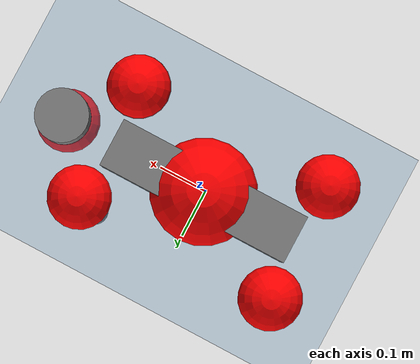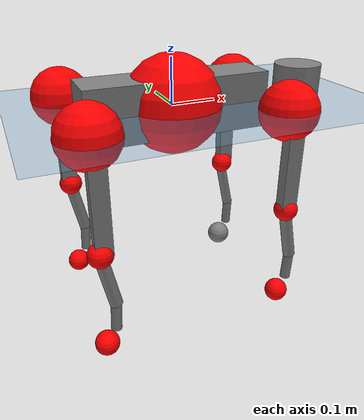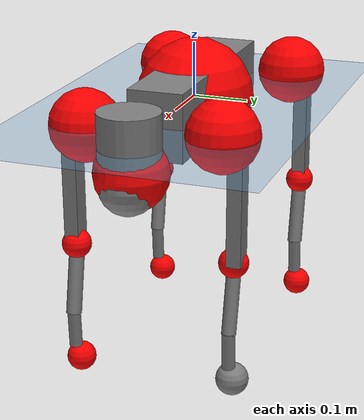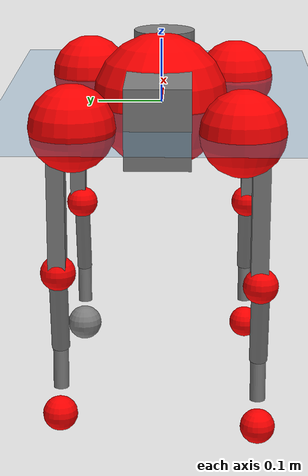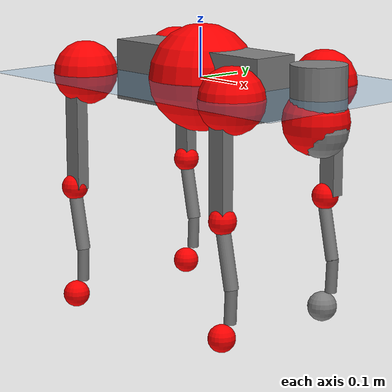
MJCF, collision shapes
<mujoco model="go2">
  <compiler angle="radian" assetdir="assets" balanceinertia="true" inertiafromgeom="false"/>

  <option timestep="0.005" density="1.2" viscosity="2e-05"/>

  <size nkey="1"/>

  <visual>
    <quality shadowsize="8192"/>
    <map shadowclip="0.5"/>
  </visual>

  <default>
    <default class="/">
      <geom contype="0" conaffinity="0" group="1" solref="-1000 -80"/>
      <site size="0.01 0.005 0.005" group="5"/>
      <general forcelimited="true" biastype="affine" gainprm="20" biasprm="0 -20 -0.5"/>
      <default class="go2">
        <joint armature="0.01" damping="0.01" frictionloss="0.2"/>
        <geom condim="1" margin="0.001"/>
        <default class="visual">
          <geom type="mesh" group="2"/>
        </default>
        <default class="collision">
          <geom group="3"/>
          <default class="foot">
            <geom size="0.022 0 0" condim="6" priority="1" friction="0.8 0.02 0.01" solimp="0.015 1 0.022"/>
          </default>
        </default>
        <default class="reward_collision_sphere">
          <geom group="5" rgba="1 0 0 1"/>
        </default>
      </default>
    </default>
  </default>

  <asset>
    <texture type="skybox" colorspace="auto" name="//unnamed_texture_0" builtin="gradient" rgb1="0.95 0.95 0.95" rgb2="0.95 0.95 0.95" width="100" height="600"/>
    <texture type="2d" colorspace="auto" name="texplane" builtin="checker" rgb1="0.345 0.575 0.748" rgb2="0.345 0.575 0.748" markrgb="1 1 1" width="512" height="512"/>
    <material name="MatPlane" class="/" texture="texplane" texuniform="true" texrepeat="2 2" specular="0.9"/>
    <material name="metal" class="/" rgba="0.9 0.95 0.95 1"/>
    <material name="black" class="/" rgba="0 0 0 1"/>
    <material name="white" class="/"/>
    <material name="gray" class="/" rgba="0.671705 0.692426 0.77427 1"/>
    <mesh name="base_0" class="/" file="base_0.obj"/>
    <mesh name="base_1" class="/" file="base_1.obj"/>
    <mesh name="base_2" class="/" file="base_2.obj"/>
    <mesh name="base_3" class="/" file="base_3.obj"/>
    <mesh name="base_4" class="/" file="base_4.obj"/>
    <mesh name="hip_0" class="/" file="hip_0.obj"/>
    <mesh name="hip_1" class="/" file="hip_1.obj"/>
    <mesh name="thigh_0" class="/" file="thigh_0.obj"/>
    <mesh name="thigh_1" class="/" file="thigh_1.obj"/>
    <mesh name="thigh_mirror_0" class="/" file="thigh_mirror_0.obj"/>
    <mesh name="thigh_mirror_1" class="/" file="thigh_mirror_1.obj"/>
    <mesh name="calf_0" class="/" file="calf_0.obj"/>
    <mesh name="calf_1" class="/" file="calf_1.obj"/>
    <mesh name="calf_mirror_0" class="/" file="calf_mirror_0.obj"/>
    <mesh name="calf_mirror_1" class="/" file="calf_mirror_1.obj"/>
    <mesh name="foot" class="/" file="foot.obj"/>
  </asset>

  <worldbody>
    <geom name="floor" class="/" size="100 100 0.125" type="plane" group="0" material="MatPlane"/>
    <light name="toplight_shadow" class="/" pos="0 0 5" dir="0.0990148 0.0990148 -0.990148" type="directional" ambient="0.04 0.04 0.04" diffuse="0.55 0.55 0.55" specular="0.12 0.12 0.12"/>
    <light name="toplight_fill" class="/" pos="0 0 5" dir="0.0990148 0.0990148 -0.990148" type="directional" castshadow="false" ambient="0.04 0.04 0.04" diffuse="0.3 0.3 0.3" specular="0.08 0.08 0.08"/>
    <body name="trunk" childclass="go2" pos="0.00308606 0.00225427 0.00079095" quat="0.999999 0.000899011 -0.000474528 0.000365655">
      <inertial pos="0.0241337 -0.00128716 -0.00370011" quat="0.0161031 0.703472 -0.00412518 0.710529" mass="8.99423" diaginertia="0.160639 0.134241 0.0317543"/>
      <joint name="//unnamed_joint_0" type="free" armature="0" damping="0" frictionloss="0"/>
      <geom name="//unnamed_geom_1" class="visual" material="black" mesh="base_0"/>
      <geom name="//unnamed_geom_2" class="visual" material="black" mesh="base_1"/>
      <geom name="//unnamed_geom_3" class="visual" material="black" mesh="base_2"/>
      <geom name="//unnamed_geom_4" class="visual" material="white" mesh="base_3"/>
      <geom name="//unnamed_geom_5" class="visual" material="gray" mesh="base_4"/>
      <geom name="trunk_1" class="collision" size="0.203181 0.0504982 0.06157" type="box"/>
      <geom name="trunk_2" class="collision" size="0.0540088 0.0486079" pos="0.314187 0 0.01073" type="cylinder"/>
      <geom name="trunk_3" class="collision" size="0.0507682" pos="0.323006 0 -0.0643802"/>
      <geom name="//unnamed_geom_9" class="reward_collision_sphere" size="0.108018"/>
      <geom name="//unnamed_geom_10" class="reward_collision_sphere" size="0.0648105" pos="0.308675 0 -0.0482852"/>
      <site name="imu" pos="-0.0347353 0.0403137 0.04195" size="0.0108018"/>
      <camera name="track" pos="0 -2.13023 0" quat="0.707107 0.707107 0 0" mode="trackcom"/>
      <camera name="ego_camera" pos="0.343952 0 0.0482852" quat="-0.5 -0.5 0.5 0.5"/>
      <body name="FL_hip" pos="0.212939 0.0508002 0.00101814" quat="0.999993 -0.00340584 -0.000213665 0.00171782">
        <inertial pos="-0.00504197 0.00430118 -0.00173626" quat="0.507594 0.495725 0.494112 0.502452" mass="0.784746" diaginertia="0.00132604 0.000748119 0.000621377"/>
        <joint name="FL_hip_joint" pos="0 0 0" axis="0.999927 0.00989342 -0.00692611" range="-1.16824 1.06064" armature="0.00869295" damping="0.0299894" frictionloss="0.191915"/>
        <geom name="//unnamed_geom_11" class="visual" material="metal" mesh="hip_0"/>
        <geom name="//unnamed_geom_12" class="visual" material="gray" mesh="hip_1"/>
        <geom name="//unnamed_geom_13" class="collision" size="0.0496881 0.0216035" pos="0 0.085209 0" quat="0.707107 0.707107 0 0" type="cylinder"/>
        <geom name="//unnamed_geom_14" class="reward_collision_sphere" size="0.0648105" pos="0 0.0745579 0"/>
        <body name="FL_thigh" pos="-0.0013988 0.100824 0.00025363" quat="1 -0.00021181 0.000365244 2.5357e-05">
          <inertial pos="-0.00512426 -0.0175171 -0.0269857" quat="0.828745 0.0915281 -0.0200571 0.551726" mass="1.44297" diaginertia="0.0101649 0.00830416 0.00131004"/>
          <joint name="FL_thigh_joint" pos="0 0 0" axis="0.0167902 0.999856 0.00258027" range="-1.58337 3.33932" armature="0.0114617" damping="0.0480088" frictionloss="0.213375"/>
          <geom name="//unnamed_geom_15" class="visual" material="metal" mesh="thigh_0"/>
          <geom name="//unnamed_geom_16" class="visual" material="gray" mesh="thigh_1"/>
          <geom name="//unnamed_geom_17" class="collision" size="0.115039 0.0132321 0.018363" pos="0 0 -0.114275" quat="0.707107 0 0.707107 0" type="box"/>
          <body name="FL_calf" pos="-0.00841814 -0.00685965 -0.231527" quat="1 -2.74899e-05 0.000311041 -0.000363867">
            <inertial pos="0.0055668 0.000729344 -0.154316" quat="0.712397 0.00368222 -0.00316651 0.70176" mass="0.283954" diaginertia="0.00236588 0.00198052 7.56913e-05"/>
            <joint name="FL_calf_joint" pos="0 0 0" axis="0.00206134 0.999986 -0.00484185" stiffness="0.0402096" range="-2.77428 -0.730683" armature="0.0112215" damping="0" frictionloss="0.191706"/>
            <geom name="//unnamed_geom_18" class="visual" material="gray" mesh="calf_0"/>
            <geom name="//unnamed_geom_19" class="visual" material="black" mesh="calf_1"/>
            <geom name="FL_calf0" class="collision" size="0.0129621 0.0648105" pos="0.00881927 0 -0.0643802" quat="0.994493 0 -0.104807 0" type="cylinder"/>
            <geom name="//unnamed_geom_21" class="collision" size="0.0118819 0.0351057" pos="0.0220482 0 -0.158805" quat="0.999688 0 0.0249974 0" type="cylinder"/>
            <geom name="//unnamed_geom_22" class="visual" pos="0 0 -0.22855" quat="1 0 0 0" material="black" mesh="foot"/>
            <geom name="FL_foot" class="foot" size="0.0299745" pos="-0.00220482 0 -0.22855"/>
            <geom name="//unnamed_geom_24" class="reward_collision_sphere" size="0.0270044"/>
            <geom name="//unnamed_geom_25" class="reward_collision_sphere" size="0.0270044" pos="-0.00220482 0 -0.22855"/>
            <site name="FL_foot" class="foot" pos="-0.00220482 0 -0.22855" size="0.0108018"/>
          </body>
        </body>
      </body>
      <body name="FR_hip" pos="0.212498 -0.0502942 -0.00663537" quat="1 0.000686706 -0.000209999 0.000467563">
        <inertial pos="-0.00752255 0.000624713 0.00140879" quat="0.513877 0.48289 0.512307 0.490193" mass="0.789405" diaginertia="0.001335 0.000750113 0.000642195"/>
        <joint name="FR_hip_joint" pos="0 0 0" axis="0.999987 -0.00511822 0.000168027" stiffness="0.0151234" range="-1.11492 1.08965" armature="0.010793" damping="0" frictionloss="0.225923"/>
        <geom name="//unnamed_geom_26" class="visual" pos="0 -6.87467e-11 -2.94869e-09" quat="4.63268e-05 1 0 0" material="metal" mesh="hip_0"/>
        <geom name="//unnamed_geom_27" class="visual" pos="0 -1.11446e-10 7.29323e-09" quat="4.63268e-05 1 0 0" material="gray" mesh="hip_1"/>
        <geom name="//unnamed_geom_28" class="collision" size="0.0496881 0.0216035" pos="0 -0.085209 0" quat="0.707107 0.707107 0 0" type="cylinder"/>
        <geom name="//unnamed_geom_29" class="reward_collision_sphere" size="0.0648105" pos="0 -0.0745579 0"/>
        <body name="FR_thigh" pos="-0.000629563 -0.101717 0.00419891" quat="1 -0.0004752 0.00013201 0.000343556">
          <inertial pos="-0.00428773 0.0238644 -0.0282432" quat="0.551878 0.00645796 0.11664 0.825702" mass="1.35253" diaginertia="0.00900458 0.00736847 0.00115"/>
          <joint name="FR_thigh_joint" pos="0 0 0" axis="0.00213205 -0.99997 0.00748065" range="-3.35964 1.48876" armature="0.0128593" damping="0.020034" frictionloss="0.236516"/>
          <geom name="//unnamed_geom_30" class="visual" material="metal" mesh="thigh_mirror_0"/>
          <geom name="//unnamed_geom_31" class="visual" material="gray" mesh="thigh_mirror_1"/>
          <geom name="//unnamed_geom_32" class="collision" size="0.115039 0.0132321 0.018363" pos="0 0 -0.114275" quat="0.707107 0 0.707107 0" type="box"/>
          <body name="FR_calf" pos="0.00195507 0.00252318 -0.228328" quat="1 -1.25556e-05 1.19285e-05 -8.2675e-05">
            <inertial pos="0.00902932 0.0015123 -0.160116" quat="0.704022 -0.00442779 0.00734319 0.710127" mass="0.352338" diaginertia="0.00268691 0.00199882 8.96522e-05"/>
            <joint name="FR_calf_joint" pos="0 0 0" axis="0.0028963 -0.999983 0.00496372" stiffness="0.00670409" range="0.853941 2.74064" armature="0.00881982" damping="0.00448022" frictionloss="0.212292"/>
            <geom name="//unnamed_geom_33" class="visual" material="gray" mesh="calf_mirror_0"/>
            <geom name="//unnamed_geom_34" class="visual" material="black" mesh="calf_mirror_1"/>
            <geom name="FR_calf0" class="collision" size="0.0140423 0.0648105" pos="0.0110241 0 -0.0643802" quat="0.995004 0 -0.0998334 0" type="cylinder"/>
            <geom name="//unnamed_geom_36" class="collision" size="0.0118819 0.0351057" pos="0.0220482 0 -0.158805" quat="0.999688 0 0.0249974 0" type="cylinder"/>
            <geom name="//unnamed_geom_37" class="visual" pos="0 0 -0.22855" quat="1 0 0 0" material="black" mesh="foot"/>
            <geom name="FR_foot" class="foot" size="0.0201177" pos="-0.00220482 0 -0.22855"/>
            <geom name="//unnamed_geom_39" class="reward_collision_sphere" size="0.0270044"/>
            <geom name="//unnamed_geom_40" class="reward_collision_sphere" size="0.0270044" pos="-0.00220482 0 -0.22855"/>
            <site name="FR_foot" class="foot" pos="-0.00220482 0 -0.22855" size="0.0108018"/>
          </body>
        </body>
      </body>
      <body name="RL_hip" pos="-0.215741 0.0498034 0.00658085" quat="1 4.53104e-05 0.000483801 -0.000193229">
        <inertial pos="0.00628516 -5.81416e-05 0.00640463" quat="0.502764 0.504937 0.500793 0.491399" mass="0.768438" diaginertia="0.00130874 0.000819584 0.000680593"/>
        <joint name="RL_hip_joint" pos="0 0 0" axis="-0.99996 0.00433133 0.00782963" stiffness="0.00726022" range="-1.20048 0.931221" armature="0.0105851" damping="0.0222162" frictionloss="0.153287"/>
        <geom name="//unnamed_geom_41" class="visual" pos="-2.56167e-10 0 -5.02145e-08" quat="4.63268e-05 0 1 0" material="metal" mesh="hip_0"/>
        <geom name="//unnamed_geom_42" class="visual" pos="-4.15277e-10 0 -4.45332e-08" quat="4.63268e-05 0 1 0" material="gray" mesh="hip_1"/>
        <geom name="//unnamed_geom_43" class="collision" size="0.0496881 0.0216035" pos="0 0.085209 0" quat="0.707107 0.707107 0 0" type="cylinder"/>
        <geom name="//unnamed_geom_44" class="reward_collision_sphere" size="0.0648105" pos="0 0.0745579 0"/>
        <body name="RL_thigh" pos="0.00122555 0.099183 0.000230329" quat="1 3.68355e-06 -1.47708e-06 -1.9762e-06">
          <inertial pos="0.00136329 -0.021757 -0.0271132" quat="0.819399 0.108948 -0.0216365 0.562359" mass="1.4153" diaginertia="0.010497 0.00814232 0.00134568"/>
          <joint name="RL_thigh_joint" pos="0 0 0" axis="-0.010857 0.999656 -0.0238562" range="-0.408067 4.49902" armature="0.0112155" damping="0.0101779" frictionloss="0.209641"/>
          <geom name="//unnamed_geom_45" class="visual" material="metal" mesh="thigh_0"/>
          <geom name="//unnamed_geom_46" class="visual" material="gray" mesh="thigh_1"/>
          <geom name="//unnamed_geom_47" class="collision" size="0.115039 0.0132321 0.018363" pos="0 0 -0.114275" quat="0.707107 0 0.707107 0" type="box"/>
          <body name="RL_calf" pos="0.00232939 -0.00023243 -0.225111" quat="1 1.39732e-05 -0.000654503 -0.000165395">
            <inertial pos="0.00546681 0.00114936 -0.154257" quat="0.721273 0.0140745 -0.0118985 0.692406" mass="0.31608" diaginertia="0.00243476 0.00200466 7.44602e-05"/>
            <joint name="RL_calf_joint" pos="0 0 0" axis="-0.00237573 0.999984 -0.00514489" stiffness="0.0409081" range="-2.7041 -0.836304" armature="0.0116711" damping="0.00422921" frictionloss="0.198554"/>
            <geom name="//unnamed_geom_48" class="visual" material="gray" mesh="calf_0"/>
            <geom name="//unnamed_geom_49" class="visual" material="black" mesh="calf_1"/>
            <geom name="RL_calf0" class="collision" size="0.0140423 0.0648105" pos="0.0110241 0 -0.0643802" quat="0.995004 0 -0.0998334 0" type="cylinder"/>
            <geom name="//unnamed_geom_51" class="collision" size="0.0118819 0.0351057" pos="0.0220482 0 -0.158805" quat="0.999688 0 0.0249974 0" type="cylinder"/>
            <geom name="//unnamed_geom_52" class="visual" pos="0 0 -0.22855" quat="1 0 0 0" material="black" mesh="foot"/>
            <geom name="RL_foot" class="foot" size="0.0237629" pos="-0.00220482 0 -0.22855"/>
            <geom name="//unnamed_geom_54" class="reward_collision_sphere" size="0.0270044"/>
            <geom name="//unnamed_geom_55" class="reward_collision_sphere" size="0.0270044" pos="-0.00220482 0 -0.22855"/>
            <site name="RL_foot" class="foot" pos="-0.00220482 0 -0.22855" size="0.0108018"/>
          </body>
        </body>
      </body>
      <body name="RR_hip" pos="-0.213323 -0.0508977 -0.000518717" quat="1 0.000263503 0.000113565 -7.04135e-05">
        <inertial pos="0.00702362 -0.00756718 0.00297854" quat="0.499047 0.496592 0.4974 0.506894" mass="0.9328" diaginertia="0.00153034 0.000869838 0.000742504"/>
        <joint name="RR_hip_joint" pos="0 0 0" axis="-0.999999 0.000621194 0.00130045" range="-1.03809 1.1344" armature="0.0113753" damping="0.0394476" frictionloss="0.223589"/>
        <geom name="//unnamed_geom_56" class="visual" pos="2.54875e-10 -6.87467e-11 -4.72659e-08" quat="2.14617e-09 4.63268e-05 4.63268e-05 -1" material="metal" mesh="hip_0"/>
        <geom name="//unnamed_geom_57" class="visual" pos="4.1847e-10 -1.11446e-10 -5.18264e-08" quat="2.14617e-09 4.63268e-05 4.63268e-05 -1" material="gray" mesh="hip_1"/>
        <geom name="//unnamed_geom_58" class="collision" size="0.0496881 0.0216035" pos="0 -0.085209 0" quat="0.707107 0.707107 0 0" type="cylinder"/>
        <geom name="//unnamed_geom_59" class="reward_collision_sphere" size="0.0648105" pos="0 -0.0745579 0"/>
        <body name="RR_thigh" pos="0.00271128 -0.102747 -0.00660191" quat="1 0.000110315 -0.000144183 -0.000729084">
          <inertial pos="-0.00204883 0.0206132 -0.0350174" quat="0.553997 -0.0220609 0.0848092 0.827894" mass="1.61926" diaginertia="0.0102001 0.00822945 0.00124887"/>
          <joint name="RR_thigh_joint" pos="0 0 0" axis="-0.00225966 -0.999958 0.00883631" range="-4.40754 0.409346" armature="0.0113661" damping="0.0163247" frictionloss="0.265859"/>
          <geom name="//unnamed_geom_60" class="visual" material="metal" mesh="thigh_mirror_0"/>
          <geom name="//unnamed_geom_61" class="visual" material="gray" mesh="thigh_mirror_1"/>
          <geom name="//unnamed_geom_62" class="collision" size="0.115039 0.0132321 0.018363" pos="0 0 -0.114275" quat="0.707107 0 0.707107 0" type="box"/>
          <body name="RR_calf" pos="-0.00678731 -0.00222089 -0.227286" quat="1 0.000649931 4.9561e-05 -0.000609435">
            <inertial pos="0.00770223 0.000817775 -0.151364" quat="0.710481 -0.00905658 -0.000986781 0.703657" mass="0.327955" diaginertia="0.00244255 0.00201554 7.98612e-05"/>
            <joint name="RR_calf_joint" pos="0 0 0" axis="0.0139204 -0.999902 -0.00162389" stiffness="0.0189277" range="0.813839 2.69196" armature="0.0109864" damping="0.0465674" frictionloss="0.207212"/>
            <geom name="//unnamed_geom_63" class="visual" material="gray" mesh="calf_mirror_0"/>
            <geom name="//unnamed_geom_64" class="visual" material="black" mesh="calf_mirror_1"/>
            <geom name="RR_calf0" class="collision" size="0.0140423 0.0648105" pos="0.0110241 0 -0.0643802" quat="0.995004 0 -0.0998334 0" type="cylinder"/>
            <geom name="//unnamed_geom_66" class="collision" size="0.0118819 0.0351057" pos="0.0220482 0 -0.158805" quat="0.999688 0 0.0249974 0" type="cylinder"/>
            <geom name="//unnamed_geom_67" class="visual" pos="0 0 -0.22855" quat="1 0 0 0" material="black" mesh="foot"/>
            <geom name="RR_foot" class="foot" size="0.0205435" pos="-0.00220482 0 -0.22855"/>
            <geom name="//unnamed_geom_69" class="reward_collision_sphere" size="0.0270044"/>
            <geom name="//unnamed_geom_70" class="reward_collision_sphere" size="0.0270044" pos="-0.00220482 0 -0.22855"/>
            <site name="RR_foot" class="foot" pos="-0.00220482 0 -0.22855" size="0.0108018"/>
          </body>
        </body>
      </body>
    </body>
  </worldbody>

  <contact>
    <pair class="/" geom1="floor" geom2="FL_foot" name="//unnamed_contact_0"/>
    <pair class="/" geom1="floor" geom2="FR_foot" name="//unnamed_contact_1"/>
    <pair class="/" geom1="floor" geom2="RL_foot" name="//unnamed_contact_2"/>
    <pair class="/" geom1="floor" geom2="RR_foot" name="//unnamed_contact_3"/>
  </contact>

  <actuator>
    <general name="FL_hip" class="/" joint="FL_hip_joint" forcerange="-27.6664 27.6664" gainprm="21.1968" biasprm="0 -21.1968 -0.469191"/>
    <general name="FL_thigh" class="/" joint="FL_thigh_joint" forcerange="-20.8453 20.8453" gainprm="21.1968" biasprm="0 -21.1968 -0.469191"/>
    <general name="FL_calf" class="/" joint="FL_calf_joint" forcerange="-59.9877 59.9877" gainprm="21.1968" biasprm="0 -21.1968 -0.469191"/>
    <general name="FR_hip" class="/" joint="FR_hip_joint" forcerange="-27.6702 27.6702" gainprm="21.1968" biasprm="0 -21.1968 -0.469191"/>
    <general name="FR_thigh" class="/" joint="FR_thigh_joint" forcerange="-23.8312 23.8312" gainprm="21.1968" biasprm="0 -21.1968 -0.469191"/>
    <general name="FR_calf" class="/" joint="FR_calf_joint" forcerange="-33.0728 33.0728" gainprm="21.1968" biasprm="0 -21.1968 -0.469191"/>
    <general name="RL_hip" class="/" joint="RL_hip_joint" forcerange="-19.6141 19.6141" gainprm="21.1968" biasprm="0 -21.1968 -0.469191"/>
    <general name="RL_thigh" class="/" joint="RL_thigh_joint" forcerange="-25.0684 25.0684" gainprm="21.1968" biasprm="0 -21.1968 -0.469191"/>
    <general name="RL_calf" class="/" joint="RL_calf_joint" forcerange="-52.6583 52.6583" gainprm="21.1968" biasprm="0 -21.1968 -0.469191"/>
    <general name="RR_hip" class="/" joint="RR_hip_joint" forcerange="-24.0938 24.0938" gainprm="21.1968" biasprm="0 -21.1968 -0.469191"/>
    <general name="RR_thigh" class="/" joint="RR_thigh_joint" forcerange="-33.0245 33.0245" gainprm="21.1968" biasprm="0 -21.1968 -0.469191"/>
    <general name="RR_calf" class="/" joint="RR_calf_joint" forcerange="-56.8701 56.8701" gainprm="21.1968" biasprm="0 -21.1968 -0.469191"/>
  </actuator>

  <sensor>
    <gyro site="imu" name="imu_angular_velocity"/>
    <velocimeter site="imu" name="imu_linear_velocity"/>
    <framelinvel objtype="site" objname="FL_foot" name="FL_foot_global_linear_velocity"/>
    <framelinvel objtype="site" objname="FR_foot" name="FR_foot_global_linear_velocity"/>
    <framelinvel objtype="site" objname="RL_foot" name="RL_foot_global_linear_velocity"/>
    <framelinvel objtype="site" objname="RR_foot" name="RR_foot_global_linear_velocity"/>
  </sensor>

  <keyframe>
    <key name="home" qpos="0 0 0.325 1 0 0 0 0.1 0.8 -1.5 -0.1 -0.8 1.5 -0.1 0.8 -1.5 0.1 -0.8 1.5"/>
  </keyframe>
</mujoco>
